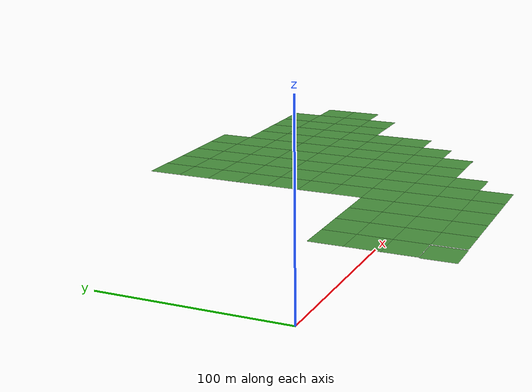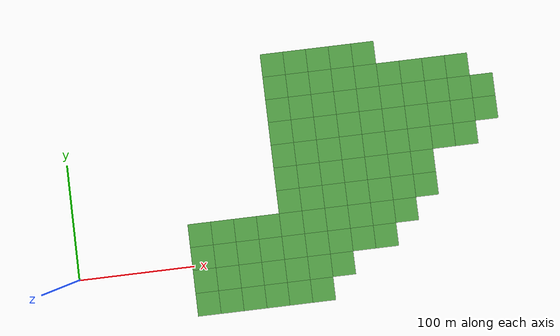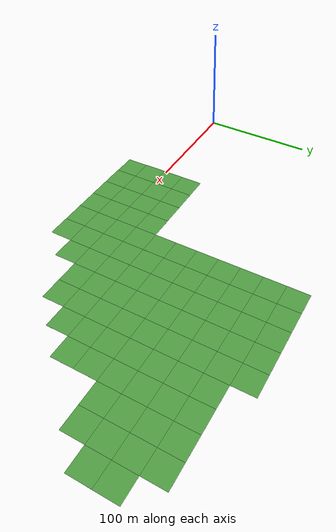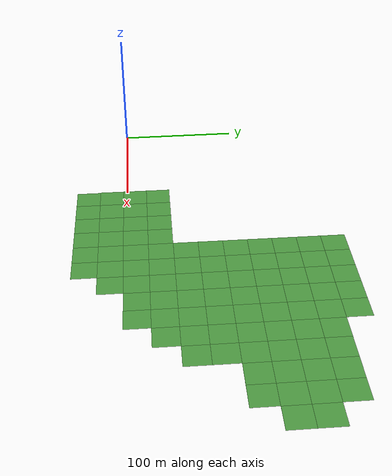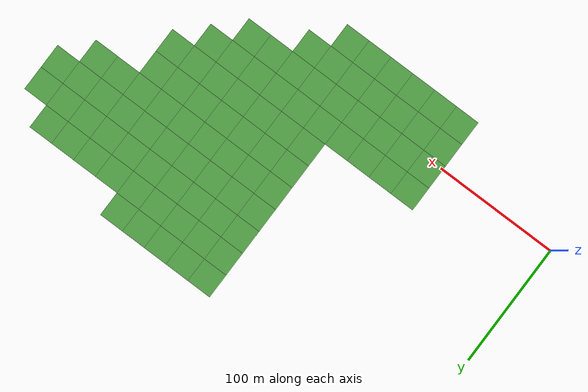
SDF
<sdf version="1.6">
 <world name="default">
  <model name="grass_plane_5">
   <static>1</static>
   <link name="link">
    <collision name="collision">
     <geometry><plane><normal>0 0 1</normal><size>500 500</size></plane></geometry>
     <surface><friction><ode><mu>0.5</mu><mu2>0.5</mu2></ode></friction></surface>
    </collision>
    <visual name="visual_0">
     <pose>-40 -40 0 0 -0 0</pose>
     <cast_shadows>0</cast_shadows>
     <geometry><plane><normal>0 0 1</normal><size>20 20</size></plane></geometry>
     <material>
      <script>
       <uri>model://grass_plane/materials/scripts</uri>
       <uri>model://grass_plane/materials/textures</uri>
       <name>vrc/grass</name>
      </script>
     </material>
    </visual>
    <visual name="visual_1">
     <pose>-20 -40 0 0 -0 0</pose>
     <cast_shadows>0</cast_shadows>
     <geometry><plane><normal>0 0 1</normal><size>20 20</size></plane></geometry>
     <material>
      <script>
       <uri>model://grass_plane/materials/scripts</uri>
       <uri>model://grass_plane/materials/textures</uri>
       <name>vrc/grass</name>
      </script>
     </material>
    </visual>
    <visual name="visual_2">
     <pose>0 -40 0 0 -0 0</pose>
     <cast_shadows>0</cast_shadows>
     <geometry><plane><normal>0 0 1</normal><size>20 20</size></plane></geometry>
     <material>
      <script>
       <uri>model://grass_plane/materials/scripts</uri>
       <uri>model://grass_plane/materials/textures</uri>
       <name>vrc/grass</name>
      </script>
     </material>
    </visual>
    <visual name="visual_3">
     <pose>20 -40 0 0 -0 0</pose>
     <cast_shadows>0</cast_shadows>
     <geometry><plane><normal>0 0 1</normal><size>20 20</size></plane></geometry>
     <material>
      <script>
       <uri>model://grass_plane/materials/scripts</uri>
       <uri>model://grass_plane/materials/textures</uri>
       <name>vrc/grass</name>
      </script>
     </material>
    </visual>
    <visual name="visual_4">
     <pose>40 -40 0 0 -0 0</pose>
     <cast_shadows>0</cast_shadows>
     <geometry><plane><normal>0 0 1</normal><size>20 20</size></plane></geometry>
     <material>
      <script>
       <uri>model://grass_plane/materials/scripts</uri>
       <uri>model://grass_plane/materials/textures</uri>
       <name>vrc/grass</name>
      </script>
     </material>
    </visual>
    <visual name="visual_5">
     <pose>60 -40 0 0 -0 0</pose>
     <cast_shadows>0</cast_shadows>
     <geometry><plane><normal>0 0 1</normal><size>20 20</size></plane></geometry>
     <material>
      <script>
       <uri>model://grass_plane/materials/scripts</uri>
       <uri>model://grass_plane/materials/textures</uri>
       <name>vrc/grass</name>
      </script>
     </material>
    </visual>
    <visual name="visual_6">
     <pose>-40 -20 0 0 -0 0</pose>
     <cast_shadows>0</cast_shadows>
     <geometry><plane><normal>0 0 1</normal><size>20 20</size></plane></geometry>
     <material>
      <script>
       <uri>model://grass_plane/materials/scripts</uri>
       <uri>model://grass_plane/materials/textures</uri>
       <name>vrc/grass</name>
      </script>
     </material>
    </visual>
    <visual name="visual_7">
     <pose>-20 -20 0 0 -0 0</pose>
     <cast_shadows>0</cast_shadows>
     <geometry><plane><normal>0 0 1</normal><size>20 20</size></plane></geometry>
     <material>
      <script>
       <uri>model://grass_plane/materials/scripts</uri>
       <uri>model://grass_plane/materials/textures</uri>
       <name>vrc/grass</name>
      </script>
     </material>
    </visual>
    <visual name="visual_8">
     <pose>0 -20 0 0 -0 0</pose>
     <cast_shadows>0</cast_shadows>
     <geometry><plane><normal>0 0 1</normal><size>20 20</size></plane></geometry>
     <material>
      <script>
       <uri>model://grass_plane/materials/scripts</uri>
       <uri>model://grass_plane/materials/textures</uri>
       <name>vrc/grass</name>
      </script>
     </material>
    </visual>
    <visual name="visual_9">
     <pose>20 -20 0 0 -0 0</pose>
     <cast_shadows>0</cast_shadows>
     <geometry><plane><normal>0 0 1</normal><size>20 20</size></plane></geometry>
     <material>
      <script>
       <uri>model://grass_plane/materials/scripts</uri>
       <uri>model://grass_plane/materials/textures</uri>
       <name>vrc/grass</name>
      </script>
     </material>
    </visual>
    <visual name="visual_10">
     <pose>40 -20 0 0 -0 0</pose>
     <cast_shadows>0</cast_shadows>
     <geometry><plane><normal>0 0 1</normal><size>20 20</size></plane></geometry>
     <material>
      <script>
       <uri>model://grass_plane/materials/scripts</uri>
       <uri>model://grass_plane/materials/textures</uri>
       <name>vrc/grass</name>
      </script>
     </material>
    </visual>
    <visual name="visual_11">
     <pose>60 -20 0 0 -0 0</pose>
     <cast_shadows>0</cast_shadows>
     <geometry><plane><normal>0 0 1</normal><size>20 20</size></plane></geometry>
     <material>
      <script>
       <uri>model://grass_plane/materials/scripts</uri>
       <uri>model://grass_plane/materials/textures</uri>
       <name>vrc/grass</name>
      </script>
     </material>
    </visual>
    <visual name="visual_12">
     <pose>80 -20 0 0 -0 0</pose>
     <cast_shadows>0</cast_shadows>
     <geometry><plane><normal>0 0 1</normal><size>20 20</size></plane></geometry>
     <material>
      <script>
       <uri>model://grass_plane/materials/scripts</uri>
       <uri>model://grass_plane/materials/textures</uri>
       <name>vrc/grass</name>
      </script>
     </material>
    </visual>
    <visual name="visual_13">
     <pose>-40 0 0 0 -0 0</pose>
     <cast_shadows>0</cast_shadows>
     <geometry><plane><normal>0 0 1</normal><size>20 20</size></plane></geometry>
     <material>
      <script>
       <uri>model://grass_plane/materials/scripts</uri>
       <uri>model://grass_plane/materials/textures</uri>
       <name>vrc/grass</name>
      </script>
     </material>
    </visual>
    <visual name="visual_14">
     <pose>-20 0 0 0 -0 0</pose>
     <cast_shadows>0</cast_shadows>
     <geometry><plane><normal>0 0 1</normal><size>20 20</size></plane></geometry>
     <material>
      <script>
       <uri>model://grass_plane/materials/scripts</uri>
       <uri>model://grass_plane/materials/textures</uri>
       <name>vrc/grass</name>
      </script>
     </material>
    </visual>
    <visual name="visual_15">
     <cast_shadows>0</cast_shadows>
     <geometry><plane><normal>0 0 1</normal><size>20 20</size></plane></geometry>
     <material>
      <script>
       <uri>model://grass_plane/materials/scripts</uri>
       <uri>model://grass_plane/materials/textures</uri>
       <name>vrc/grass</name>
      </script>
     </material>
    </visual>
    <visual name="visual_16">
     <pose>20 0 0 0 -0 0</pose>
     <cast_shadows>0</cast_shadows>
     <geometry><plane><normal>0 0 1</normal><size>20 20</size></plane></geometry>
     <material>
      <script>
       <uri>model://grass_plane/materials/scripts</uri>
       <uri>model://grass_plane/materials/textures</uri>
       <name>vrc/grass</name>
      </script>
     </material>
    </visual>
    <visual name="visual_17">
     <pose>40 0 0 0 -0 0</pose>
     <cast_shadows>0</cast_shadows>
     <geometry><plane><normal>0 0 1</normal><size>20 20</size></plane></geometry>
     <material>
      <script>
       <uri>model://grass_plane/materials/scripts</uri>
       <uri>model://grass_plane/materials/textures</uri>
       <name>vrc/grass</name>
      </script>
     </material>
    </visual>
    <visual name="visual_18">
     <pose>60 0 0 0 -0 0</pose>
     <cast_shadows>0</cast_shadows>
     <geometry><plane><normal>0 0 1</normal><size>20 20</size></plane></geometry>
     <material>
      <script>
       <uri>model://grass_plane/materials/scripts</uri>
       <uri>model://grass_plane/materials/textures</uri>
       <name>vrc/grass</name>
      </script>
     </material>
    </visual>
    <visual name="visual_19">
     <pose>80 0 0 0 -0 0</pose>
     <cast_shadows>0</cast_shadows>
     <geometry><plane><normal>0 0 1</normal><size>20 20</size></plane></geometry>
     <material>
      <script>
       <uri>model://grass_plane/materials/scripts</uri>
       <uri>model://grass_plane/materials/textures</uri>
       <name>vrc/grass</name>
      </script>
     </material>
    </visual>
    <visual name="visual_20">
     <pose>100 0 0 0 -0 0</pose>
     <cast_shadows>0</cast_shadows>
     <geometry><plane><normal>0 0 1</normal><size>20 20</size></plane></geometry>
     <material>
      <script>
       <uri>model://grass_plane/materials/scripts</uri>
       <uri>model://grass_plane/materials/textures</uri>
       <name>vrc/grass</name>
      </script>
     </material>
    </visual>
    <visual name="visual_21">
     <pose>120 0 0 0 -0 0</pose>
     <cast_shadows>0</cast_shadows>
     <geometry><plane><normal>0 0 1</normal><size>20 20</size></plane></geometry>
     <material>
      <script>
       <uri>model://grass_plane/materials/scripts</uri>
       <uri>model://grass_plane/materials/textures</uri>
       <name>vrc/grass</name>
      </script>
     </material>
    </visual>
    <visual name="visual_22">
     <pose>-40 20 0 0 -0 0</pose>
     <cast_shadows>0</cast_shadows>
     <geometry><plane><normal>0 0 1</normal><size>20 20</size></plane></geometry>
     <material>
      <script>
       <uri>model://grass_plane/materials/scripts</uri>
       <uri>model://grass_plane/materials/textures</uri>
       <name>vrc/grass</name>
      </script>
     </material>
    </visual>
    <visual name="visual_23">
     <pose>-20 20 0 0 -0 0</pose>
     <cast_shadows>0</cast_shadows>
     <geometry><plane><normal>0 0 1</normal><size>20 20</size></plane></geometry>
     <material>
      <script>
       <uri>model://grass_plane/materials/scripts</uri>
       <uri>model://grass_plane/materials/textures</uri>
       <name>vrc/grass</name>
      </script>
     </material>
    </visual>
    <visual name="visual_24">
     <pose>0 20 0 0 -0 0</pose>
     <cast_shadows>0</cast_shadows>
     <geometry><plane><normal>0 0 1</normal><size>20 20</size></plane></geometry>
     <material>
      <script>
       <uri>model://grass_plane/materials/scripts</uri>
       <uri>model://grass_plane/materials/textures</uri>
       <name>vrc/grass</name>
      </script>
     </material>
    </visual>
    <visual name="visual_25">
     <pose>20 20 0 0 -0 0</pose>
     <cast_shadows>0</cast_shadows>
     <geometry><plane><normal>0 0 1</normal><size>20 20</size></plane></geometry>
     <material>
      <script>
       <uri>model://grass_plane/materials/scripts</uri>
       <uri>model://grass_plane/materials/textures</uri>
       <name>vrc/grass</name>
      </script>
     </material>
    </visual>
    <visual name="visual_26">
     <pose>40 20 0 0 -0 0</pose>
     <cast_shadows>0</cast_shadows>
     <geometry><plane><normal>0 0 1</normal><size>20 20</size></plane></geometry>
     <material>
      <script>
       <uri>model://grass_plane/materials/scripts</uri>
       <uri>model://grass_plane/materials/textures</uri>
       <name>vrc/grass</name>
      </script>
     </material>
    </visual>
    <visual name="visual_27">
     <pose>60 20 0 0 -0 0</pose>
     <cast_shadows>0</cast_shadows>
     <geometry><plane><normal>0 0 1</normal><size>20 20</size></plane></geometry>
     <material>
      <script>
       <uri>model://grass_plane/materials/scripts</uri>
       <uri>model://grass_plane/materials/textures</uri>
       <name>vrc/grass</name>
      </script>
     </material>
    </visual>
    <visual name="visual_28">
     <pose>80 20 0 0 -0 0</pose>
     <cast_shadows>0</cast_shadows>
     <geometry><plane><normal>0 0 1</normal><size>20 20</size></plane></geometry>
     <material>
      <script>
       <uri>model://grass_plane/materials/scripts</uri>
       <uri>model://grass_plane/materials/textures</uri>
       <name>vrc/grass</name>
      </script>
     </material>
    </visual>
    <visual name="visual_29">
     <pose>100 20 0 0 -0 0</pose>
     <cast_shadows>0</cast_shadows>
     <geometry><plane><normal>0 0 1</normal><size>20 20</size></plane></geometry>
     <material>
      <script>
       <uri>model://grass_plane/materials/scripts</uri>
       <uri>model://grass_plane/materials/textures</uri>
       <name>vrc/grass</name>
      </script>
     </material>
    </visual>
    <visual name="visual_30">
     <pose>120 20 0 0 -0 0</pose>
     <cast_shadows>0</cast_shadows>
     <geometry><plane><normal>0 0 1</normal><size>20 20</size></plane></geometry>
     <material>
      <script>
       <uri>model://grass_plane/materials/scripts</uri>
       <uri>model://grass_plane/materials/textures</uri>
       <name>vrc/grass</name>
      </script>
     </material>
    </visual>
    <visual name="visual_31">
     <pose>140 20 0 0 -0 0</pose>
     <cast_shadows>0</cast_shadows>
     <geometry><plane><normal>0 0 1</normal><size>20 20</size></plane></geometry>
     <material>
      <script>
       <uri>model://grass_plane/materials/scripts</uri>
       <uri>model://grass_plane/materials/textures</uri>
       <name>vrc/grass</name>
      </script>
     </material>
    </visual>
    <visual name="visual_32">
     <pose>40 40 0 0 -0 0</pose>
     <cast_shadows>0</cast_shadows>
     <geometry><plane><normal>0 0 1</normal><size>20 20</size></plane></geometry>
     <material>
      <script>
       <uri>model://grass_plane/materials/scripts</uri>
       <uri>model://grass_plane/materials/textures</uri>
       <name>vrc/grass</name>
      </script>
     </material>
    </visual>
    <visual name="visual_33">
     <pose>60 40 0 0 -0 0</pose>
     <cast_shadows>0</cast_shadows>
     <geometry><plane><normal>0 0 1</normal><size>20 20</size></plane></geometry>
     <material>
      <script>
       <uri>model://grass_plane/materials/scripts</uri>
       <uri>model://grass_plane/materials/textures</uri>
       <name>vrc/grass</name>
      </script>
     </material>
    </visual>
    <visual name="visual_34">
     <pose>80 40 0 0 -0 0</pose>
     <cast_shadows>0</cast_shadows>
     <geometry><plane><normal>0 0 1</normal><size>20 20</size></plane></geometry>
     <material>
      <script>
       <uri>model://grass_plane/materials/scripts</uri>
       <uri>model://grass_plane/materials/textures</uri>
       <name>vrc/grass</name>
      </script>
     </material>
    </visual>
    <visual name="visual_35">
     <pose>100 40 0 0 -0 0</pose>
     <cast_shadows>0</cast_shadows>
     <geometry><plane><normal>0 0 1</normal><size>20 20</size></plane></geometry>
     <material>
      <script>
       <uri>model://grass_plane/materials/scripts</uri>
       <uri>model://grass_plane/materials/textures</uri>
       <name>vrc/grass</name>
      </script>
     </material>
    </visual>
    <visual name="visual_36">
     <pose>120 40 0 0 -0 0</pose>
     <cast_shadows>0</cast_shadows>
     <geometry><plane><normal>0 0 1</normal><size>20 20</size></plane></geometry>
     <material>
      <script>
       <uri>model://grass_plane/materials/scripts</uri>
       <uri>model://grass_plane/materials/textures</uri>
       <name>vrc/grass</name>
      </script>
     </material>
    </visual>
    <visual name="visual_37">
     <pose>140 40 0 0 -0 0</pose>
     <cast_shadows>0</cast_shadows>
     <geometry><plane><normal>0 0 1</normal><size>20 20</size></plane></geometry>
     <material>
      <script>
       <uri>model://grass_plane/materials/scripts</uri>
       <uri>model://grass_plane/materials/textures</uri>
       <name>vrc/grass</name>
      </script>
     </material>
    </visual>
    <visual name="visual_38">
     <pose>160 40 0 0 -0 0</pose>
     <cast_shadows>0</cast_shadows>
     <geometry><plane><normal>0 0 1</normal><size>20 20</size></plane></geometry>
     <material>
      <script>
       <uri>model://grass_plane/materials/scripts</uri>
       <uri>model://grass_plane/materials/textures</uri>
       <name>vrc/grass</name>
      </script>
     </material>
    </visual>
    <visual name="visual_39">
     <pose>40 60 0 0 -0 0</pose>
     <cast_shadows>0</cast_shadows>
     <geometry><plane><normal>0 0 1</normal><size>20 20</size></plane></geometry>
     <material>
      <script>
       <uri>model://grass_plane/materials/scripts</uri>
       <uri>model://grass_plane/materials/textures</uri>
       <name>vrc/grass</name>
      </script>
     </material>
    </visual>
    <visual name="visual_40">
     <pose>60 60 0 0 -0 0</pose>
     <cast_shadows>0</cast_shadows>
     <geometry><plane><normal>0 0 1</normal><size>20 20</size></plane></geometry>
     <material>
      <script>
       <uri>model://grass_plane/materials/scripts</uri>
       <uri>model://grass_plane/materials/textures</uri>
       <name>vrc/grass</name>
      </script>
     </material>
    </visual>
    <visual name="visual_41">
     <pose>80 60 0 0 -0 0</pose>
     <cast_shadows>0</cast_shadows>
     <geometry><plane><normal>0 0 1</normal><size>20 20</size></plane></geometry>
     <material>
      <script>
       <uri>model://grass_plane/materials/scripts</uri>
       <uri>model://grass_plane/materials/textures</uri>
       <name>vrc/grass</name>
      </script>
     </material>
    </visual>
    <visual name="visual_42">
     <pose>100 60 0 0 -0 0</pose>
     <cast_shadows>0</cast_shadows>
     <geometry><plane><normal>0 0 1</normal><size>20 20</size></plane></geometry>
     <material>
      <script>
       <uri>model://grass_plane/materials/scripts</uri>
       <uri>model://grass_plane/materials/textures</uri>
       <name>vrc/grass</name>
      </script>
     </material>
    </visual>
    <visual name="visual_43">
     <pose>120 60 0 0 -0 0</pose>
     <cast_shadows>0</cast_shadows>
     <geometry><plane><normal>0 0 1</normal><size>20 20</size></plane></geometry>
     <material>
      <script>
       <uri>model://grass_plane/materials/scripts</uri>
       <uri>model://grass_plane/materials/textures</uri>
       <name>vrc/grass</name>
      </script>
     </material>
    </visual>
    <visual name="visual_44">
     <pose>140 60 0 0 -0 0</pose>
     <cast_shadows>0</cast_shadows>
     <geometry><plane><normal>0 0 1</normal><size>20 20</size></plane></geometry>
     <material>
      <script>
       <uri>model://grass_plane/materials/scripts</uri>
       <uri>model://grass_plane/materials/textures</uri>
       <name>vrc/grass</name>
      </script>
     </material>
    </visual>
    <visual name="visual_45">
     <pose>160 60 0 0 -0 0</pose>
     <cast_shadows>0</cast_shadows>
     <geometry><plane><normal>0 0 1</normal><size>20 20</size></plane></geometry>
     <material>
      <script>
       <uri>model://grass_plane/materials/scripts</uri>
       <uri>model://grass_plane/materials/textures</uri>
       <name>vrc/grass</name>
      </script>
     </material>
    </visual>
    <visual name="visual_46">
     <pose>40 80 0 0 -0 0</pose>
     <cast_shadows>0</cast_shadows>
     <geometry><plane><normal>0 0 1</normal><size>20 20</size></plane></geometry>
     <material>
      <script>
       <uri>model://grass_plane/materials/scripts</uri>
       <uri>model://grass_plane/materials/textures</uri>
       <name>vrc/grass</name>
      </script>
     </material>
    </visual>
    <visual name="visual_47">
     <pose>60 80 0 0 -0 0</pose>
     <cast_shadows>0</cast_shadows>
     <geometry><plane><normal>0 0 1</normal><size>20 20</size></plane></geometry>
     <material>
      <script>
       <uri>model://grass_plane/materials/scripts</uri>
       <uri>model://grass_plane/materials/textures</uri>
       <name>vrc/grass</name>
      </script>
     </material>
    </visual>
    <visual name="visual_48">
     <pose>80 80 0 0 -0 0</pose>
     <cast_shadows>0</cast_shadows>
     <geometry><plane><normal>0 0 1</normal><size>20 20</size></plane></geometry>
     <material>
      <script>
       <uri>model://grass_plane/materials/scripts</uri>
       <uri>model://grass_plane/materials/textures</uri>
       <name>vrc/grass</name>
      </script>
     </material>
    </visual>
    <visual name="visual_49">
     <pose>100 80 0 0 -0 0</pose>
     <cast_shadows>0</cast_shadows>
     <geometry><plane><normal>0 0 1</normal><size>20 20</size></plane></geometry>
     <material>
      <script>
       <uri>model://grass_plane/materials/scripts</uri>
       <uri>model://grass_plane/materials/textures</uri>
       <name>vrc/grass</name>
      </script>
     </material>
    </visual>
    <visual name="visual_50">
     <pose>120 80 0 0 -0 0</pose>
     <cast_shadows>0</cast_shadows>
     <geometry><plane><normal>0 0 1</normal><size>20 20</size></plane></geometry>
     <material>
      <script>
       <uri>model://grass_plane/materials/scripts</uri>
       <uri>model://grass_plane/materials/textures</uri>
       <name>vrc/grass</name>
      </script>
     </material>
    </visual>
    <visual name="visual_51">
     <pose>140 80 0 0 -0 0</pose>
     <cast_shadows>0</cast_shadows>
     <geometry><plane><normal>0 0 1</normal><size>20 20</size></plane></geometry>
     <material>
      <script>
       <uri>model://grass_plane/materials/scripts</uri>
       <uri>model://grass_plane/materials/textures</uri>
       <name>vrc/grass</name>
      </script>
     </material>
    </visual>
    <visual name="visual_52">
     <pose>160 80 0 0 -0 0</pose>
     <cast_shadows>0</cast_shadows>
     <geometry><plane><normal>0 0 1</normal><size>20 20</size></plane></geometry>
     <material>
      <script>
       <uri>model://grass_plane/materials/scripts</uri>
       <uri>model://grass_plane/materials/textures</uri>
       <name>vrc/grass</name>
      </script>
     </material>
    </visual>
    <visual name="visual_53">
     <pose>180 80 0 0 -0 0</pose>
     <cast_shadows>0</cast_shadows>
     <geometry><plane><normal>0 0 1</normal><size>20 20</size></plane></geometry>
     <material>
      <script>
       <uri>model://grass_plane/materials/scripts</uri>
       <uri>model://grass_plane/materials/textures</uri>
       <name>vrc/grass</name>
      </script>
     </material>
    </visual>
    <visual name="visual_54">
     <pose>200 80 0 0 -0 0</pose>
     <cast_shadows>0</cast_shadows>
     <geometry><plane><normal>0 0 1</normal><size>20 20</size></plane></geometry>
     <material>
      <script>
       <uri>model://grass_plane/materials/scripts</uri>
       <uri>model://grass_plane/materials/textures</uri>
       <name>vrc/grass</name>
      </script>
     </material>
    </visual>
    <visual name="visual_55">
     <pose>40 100 0 0 -0 0</pose>
     <cast_shadows>0</cast_shadows>
     <geometry><plane><normal>0 0 1</normal><size>20 20</size></plane></geometry>
     <material>
      <script>
       <uri>model://grass_plane/materials/scripts</uri>
       <uri>model://grass_plane/materials/textures</uri>
       <name>vrc/grass</name>
      </script>
     </material>
    </visual>
    <visual name="visual_56">
     <pose>60 100 0 0 -0 0</pose>
     <cast_shadows>0</cast_shadows>
     <geometry><plane><normal>0 0 1</normal><size>20 20</size></plane></geometry>
     <material>
      <script>
       <uri>model://grass_plane/materials/scripts</uri>
       <uri>model://grass_plane/materials/textures</uri>
       <name>vrc/grass</name>
      </script>
     </material>
    </visual>
    <visual name="visual_57">
     <pose>80 100 0 0 -0 0</pose>
     <cast_shadows>0</cast_shadows>
     <geometry><plane><normal>0 0 1</normal><size>20 20</size></plane></geometry>
     <material>
      <script>
       <uri>model://grass_plane/materials/scripts</uri>
       <uri>model://grass_plane/materials/textures</uri>
       <name>vrc/grass</name>
      </script>
     </material>
    </visual>
    <visual name="visual_58">
     <pose>100 100 0 0 -0 0</pose>
     <cast_shadows>0</cast_shadows>
     <geometry><plane><normal>0 0 1</normal><size>20 20</size></plane></geometry>
     <material>
      <script>
       <uri>model://grass_plane/materials/scripts</uri>
       <uri>model://grass_plane/materials/textures</uri>
       <name>vrc/grass</name>
      </script>
     </material>
    </visual>
    <visual name="visual_59">
     <pose>120 100 0 0 -0 0</pose>
     <cast_shadows>0</cast_shadows>
     <geometry><plane><normal>0 0 1</normal><size>20 20</size></plane></geometry>
     <material>
      <script>
       <uri>model://grass_plane/materials/scripts</uri>
       <uri>model://grass_plane/materials/textures</uri>
       <name>vrc/grass</name>
      </script>
     </material>
    </visual>
    <visual name="visual_60">
     <pose>140 100 0 0 -0 0</pose>
     <cast_shadows>0</cast_shadows>
     <geometry><plane><normal>0 0 1</normal><size>20 20</size></plane></geometry>
     <material>
      <script>
       <uri>model://grass_plane/materials/scripts</uri>
       <uri>model://grass_plane/materials/textures</uri>
       <name>vrc/grass</name>
      </script>
     </material>
    </visual>
    <visual name="visual_61">
     <pose>160 100 0 0 -0 0</pose>
     <cast_shadows>0</cast_shadows>
     <geometry><plane><normal>0 0 1</normal><size>20 20</size></plane></geometry>
     <material>
      <script>
       <uri>model://grass_plane/materials/scripts</uri>
       <uri>model://grass_plane/materials/textures</uri>
       <name>vrc/grass</name>
      </script>
     </material>
    </visual>
    <visual name="visual_62">
     <pose>180 100 0 0 -0 0</pose>
     <cast_shadows>0</cast_shadows>
     <geometry><plane><normal>0 0 1</normal><size>20 20</size></plane></geometry>
     <material>
      <script>
       <uri>model://grass_plane/materials/scripts</uri>
       <uri>model://grass_plane/materials/textures</uri>
       <name>vrc/grass</name>
      </script>
     </material>
    </visual>
    <visual name="visual_63">
     <pose>200 100 0 0 -0 0</pose>
     <cast_shadows>0</cast_shadows>
     <geometry><plane><normal>0 0 1</normal><size>20 20</size></plane></geometry>
     <material>
      <script>
       <uri>model://grass_plane/materials/scripts</uri>
       <uri>model://grass_plane/materials/textures</uri>
       <name>vrc/grass</name>
      </script>
     </material>
    </visual>
    <visual name="visual_63a">
     <pose>220 100 0 0 -0 0</pose>
     <cast_shadows>0</cast_shadows>
     <geometry><plane><normal>0 0 1</normal><size>20 20</size></plane></geometry>
     <material>
      <script>
       <uri>model://grass_plane/materials/scripts</uri>
       <uri>model://grass_plane/materials/textures</uri>
       <name>vrc/grass</name>
      </script>
     </material>
    </visual>
    <visual name="visual_64">
     <pose>40 120 0 0 -0 0</pose>
     <cast_shadows>0</cast_shadows>
     <geometry><plane><normal>0 0 1</normal><size>20 20</size></plane></geometry>
     <material>
      <script>
       <uri>model://grass_plane/materials/scripts</uri>
       <uri>model://grass_plane/materials/textures</uri>
       <name>vrc/grass</name>
      </script>
     </material>
    </visual>
    <visual name="visual_65">
     <pose>60 120 0 0 -0 0</pose>
     <cast_shadows>0</cast_shadows>
     <geometry><plane><normal>0 0 1</normal><size>20 20</size></plane></geometry>
     <material>
      <script>
       <uri>model://grass_plane/materials/scripts</uri>
       <uri>model://grass_plane/materials/textures</uri>
       <name>vrc/grass</name>
      </script>
     </material>
    </visual>
    <visual name="visual_66">
     <pose>80 120 0 0 -0 0</pose>
     <cast_shadows>0</cast_shadows>
     <geometry><plane><normal>0 0 1</normal><size>20 20</size></plane></geometry>
     <material>
      <script>
       <uri>model://grass_plane/materials/scripts</uri>
       <uri>model://grass_plane/materials/textures</uri>
       <name>vrc/grass</name>
      </script>
     </material>
    </visual>
    <visual name="visual_67">
     <pose>100 120 0 0 -0 0</pose>
     <cast_shadows>0</cast_shadows>
     <geometry><plane><normal>0 0 1</normal><size>20 20</size></plane></geometry>
     <material>
      <script>
       <uri>model://grass_plane/materials/scripts</uri>
       <uri>model://grass_plane/materials/textures</uri>
       <name>vrc/grass</name>
      </script>
     </material>
    </visual>
    <visual name="visual_68">
     <pose>120 120 0 0 -0 0</pose>
     <cast_shadows>0</cast_shadows>
     <geometry><plane><normal>0 0 1</normal><size>20 20</size></plane></geometry>
     <material>
      <script>
       <uri>model://grass_plane/materials/scripts</uri>
       <uri>model://grass_plane/materials/textures</uri>
       <name>vrc/grass</name>
      </script>
     </material>
    </visual>
    <visual name="visual_69">
     <pose>140 120 0 0 -0 0</pose>
     <cast_shadows>0</cast_shadows>
     <geometry><plane><normal>0 0 1</normal><size>20 20</size></plane></geometry>
     <material>
      <script>
       <uri>model://grass_plane/materials/scripts</uri>
       <uri>model://grass_plane/materials/textures</uri>
       <name>vrc/grass</name>
      </script>
     </material>
    </visual>
    <visual name="visual_70">
     <pose>160 120 0 0 -0 0</pose>
     <cast_shadows>0</cast_shadows>
     <geometry><plane><normal>0 0 1</normal><size>20 20</size></plane></geometry>
     <material>
      <script>
       <uri>model://grass_plane/materials/scripts</uri>
       <uri>model://grass_plane/materials/textures</uri>
       <name>vrc/grass</name>
      </script>
     </material>
    </visual>
    <visual name="visual_71">
     <pose>180 120 0 0 -0 0</pose>
     <cast_shadows>0</cast_shadows>
     <geometry><plane><normal>0 0 1</normal><size>20 20</size></plane></geometry>
     <material>
      <script>
       <uri>model://grass_plane/materials/scripts</uri>
       <uri>model://grass_plane/materials/textures</uri>
       <name>vrc/grass</name>
      </script>
     </material>
    </visual>
    <visual name="visual_72">
     <pose>200 120 0 0 -0 0</pose>
     <cast_shadows>0</cast_shadows>
     <geometry><plane><normal>0 0 1</normal><size>20 20</size></plane></geometry>
     <material>
      <script>
       <uri>model://grass_plane/materials/scripts</uri>
       <uri>model://grass_plane/materials/textures</uri>
       <name>vrc/grass</name>
      </script>
     </material>
    </visual>
    <visual name="visual_72a">
     <pose>220 120 0 0 -0 0</pose>
     <cast_shadows>0</cast_shadows>
     <geometry><plane><normal>0 0 1</normal><size>20 20</size></plane></geometry>
     <material>
      <script>
       <uri>model://grass_plane/materials/scripts</uri>
       <uri>model://grass_plane/materials/textures</uri>
       <name>vrc/grass</name>
      </script>
     </material>
    </visual>
    <visual name="visual_73">
     <pose>40 140 0 0 -0 0</pose>
     <cast_shadows>0</cast_shadows>
     <geometry><plane><normal>0 0 1</normal><size>20 20</size></plane></geometry>
     <material>
      <script>
       <uri>model://grass_plane/materials/scripts</uri>
       <uri>model://grass_plane/materials/textures</uri>
       <name>vrc/grass</name>
      </script>
     </material>
    </visual>
    <visual name="visual_74">
     <pose>60 140 0 0 -0 0</pose>
     <cast_shadows>0</cast_shadows>
     <geometry><plane><normal>0 0 1</normal><size>20 20</size></plane></geometry>
     <material>
      <script>
       <uri>model://grass_plane/materials/scripts</uri>
       <uri>model://grass_plane/materials/textures</uri>
       <name>vrc/grass</name>
      </script>
     </material>
    </visual>
    <visual name="visual_75">
     <pose>80 140 0 0 -0 0</pose>
     <cast_shadows>0</cast_shadows>
     <geometry><plane><normal>0 0 1</normal><size>20 20</size></plane></geometry>
     <material>
      <script>
       <uri>model://grass_plane/materials/scripts</uri>
       <uri>model://grass_plane/materials/textures</uri>
       <name>vrc/grass</name>
      </script>
     </material>
    </visual>
    <visual name="visual_76">
     <pose>100 140 0 0 -0 0</pose>
     <cast_shadows>0</cast_shadows>
     <geometry><plane><normal>0 0 1</normal><size>20 20</size></plane></geometry>
     <material>
      <script>
       <uri>model://grass_plane/materials/scripts</uri>
       <uri>model://grass_plane/materials/textures</uri>
       <name>vrc/grass</name>
      </script>
     </material>
    </visual>
    <visual name="visual_77">
     <pose>120 140 0 0 -0 0</pose>
     <cast_shadows>0</cast_shadows>
     <geometry><plane><normal>0 0 1</normal><size>20 20</size></plane></geometry>
     <material>
      <script>
       <uri>model://grass_plane/materials/scripts</uri>
       <uri>model://grass_plane/materials/textures</uri>
       <name>vrc/grass</name>
      </script>
     </material>
    </visual>
    <visual name="visual_78">
     <pose>140 140 0 0 -0 0</pose>
     <cast_shadows>0</cast_shadows>
     <geometry><plane><normal>0 0 1</normal><size>20 20</size></plane></geometry>
     <material>
      <script>
       <uri>model://grass_plane/materials/scripts</uri>
       <uri>model://grass_plane/materials/textures</uri>
       <name>vrc/grass</name>
      </script>
     </material>
    </visual>
    <visual name="visual_79">
     <pose>160 140 0 0 -0 0</pose>
     <cast_shadows>0</cast_shadows>
     <geometry><plane><normal>0 0 1</normal><size>20 20</size></plane></geometry>
     <material>
      <script>
       <uri>model://grass_plane/materials/scripts</uri>
       <uri>model://grass_plane/materials/textures</uri>
       <name>vrc/grass</name>
      </script>
     </material>
    </visual>
    <visual name="visual_80">
     <pose>180 140 0 0 -0 0</pose>
     <cast_shadows>0</cast_shadows>
     <geometry><plane><normal>0 0 1</normal><size>20 20</size></plane></geometry>
     <material>
      <script>
       <uri>model://grass_plane/materials/scripts</uri>
       <uri>model://grass_plane/materials/textures</uri>
       <name>vrc/grass</name>
      </script>
     </material>
    </visual>
    <visual name="visual_81">
     <pose>200 140 0 0 -0 0</pose>
     <cast_shadows>0</cast_shadows>
     <geometry><plane><normal>0 0 1</normal><size>20 20</size></plane></geometry>
     <material>
      <script>
       <uri>model://grass_plane/materials/scripts</uri>
       <uri>model://grass_plane/materials/textures</uri>
       <name>vrc/grass</name>
      </script>
     </material>
    </visual>
    <visual name="visual_82">
     <pose>40 160 0 0 -0 0</pose>
     <cast_shadows>0</cast_shadows>
     <geometry><plane><normal>0 0 1</normal><size>20 20</size></plane></geometry>
     <material>
      <script>
       <uri>model://grass_plane/materials/scripts</uri>
       <uri>model://grass_plane/materials/textures</uri>
       <name>vrc/grass</name>
      </script>
     </material>
    </visual>
    <visual name="visual_83">
     <pose>60 160 0 0 -0 0</pose>
     <cast_shadows>0</cast_shadows>
     <geometry><plane><normal>0 0 1</normal><size>20 20</size></plane></geometry>
     <material>
      <script>
       <uri>model://grass_plane/materials/scripts</uri>
       <uri>model://grass_plane/materials/textures</uri>
       <name>vrc/grass</name>
      </script>
     </material>
    </visual>
    <visual name="visual_84">
     <pose>80 160 0 0 -0 0</pose>
     <cast_shadows>0</cast_shadows>
     <geometry><plane><normal>0 0 1</normal><size>20 20</size></plane></geometry>
     <material>
      <script>
       <uri>model://grass_plane/materials/scripts</uri>
       <uri>model://grass_plane/materials/textures</uri>
       <name>vrc/grass</name>
      </script>
     </material>
    </visual>
    <visual name="visual_85">
     <pose>100 160 0 0 -0 0</pose>
     <cast_shadows>0</cast_shadows>
     <geometry><plane><normal>0 0 1</normal><size>20 20</size></plane></geometry>
     <material>
      <script>
       <uri>model://grass_plane/materials/scripts</uri>
       <uri>model://grass_plane/materials/textures</uri>
       <name>vrc/grass</name>
      </script>
     </material>
    </visual>
    <visual name="visual_86">
     <pose>120 160 0 0 -0 0</pose>
     <cast_shadows>0</cast_shadows>
     <geometry><plane><normal>0 0 1</normal><size>20 20</size></plane></geometry>
     <material>
      <script>
       <uri>model://grass_plane/materials/scripts</uri>
       <uri>model://grass_plane/materials/textures</uri>
       <name>vrc/grass</name>
      </script>
     </material>
    </visual>
   </link>
   <pose>148.164 6.80567 0 0 -0 0</pose>
  </model>
 </world>
</sdf>
